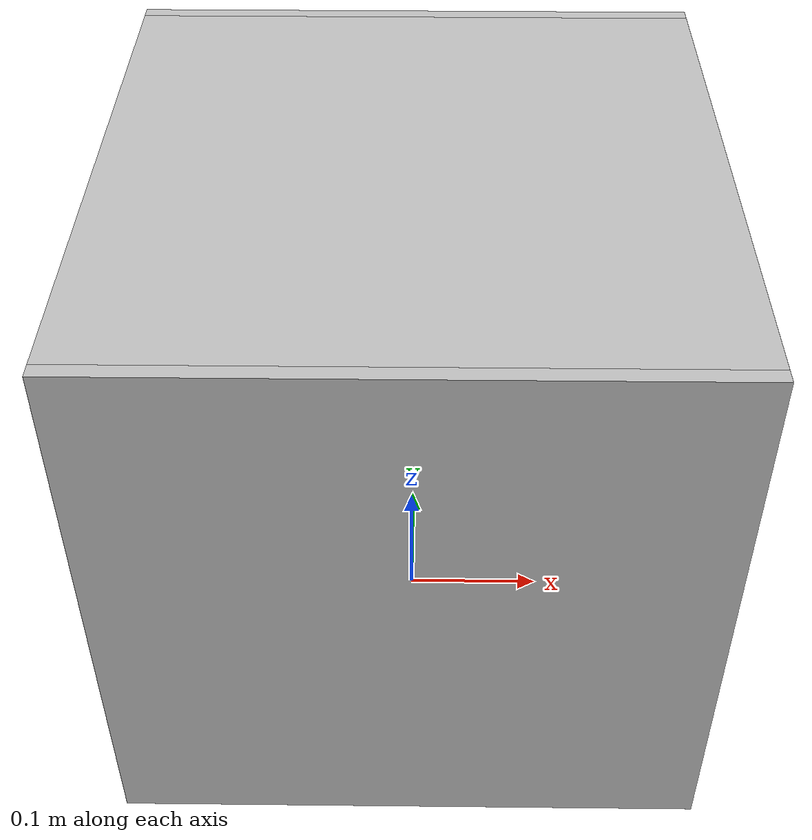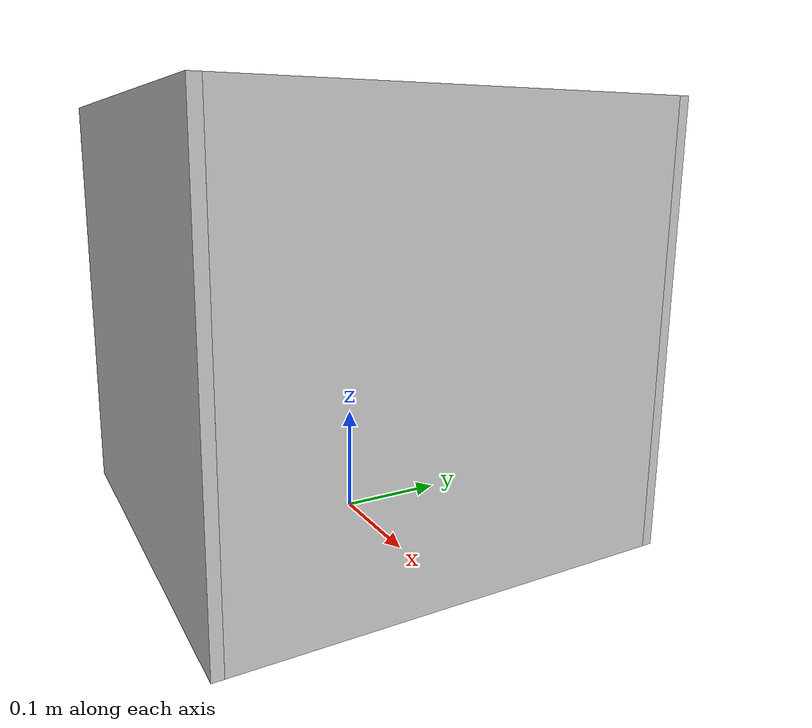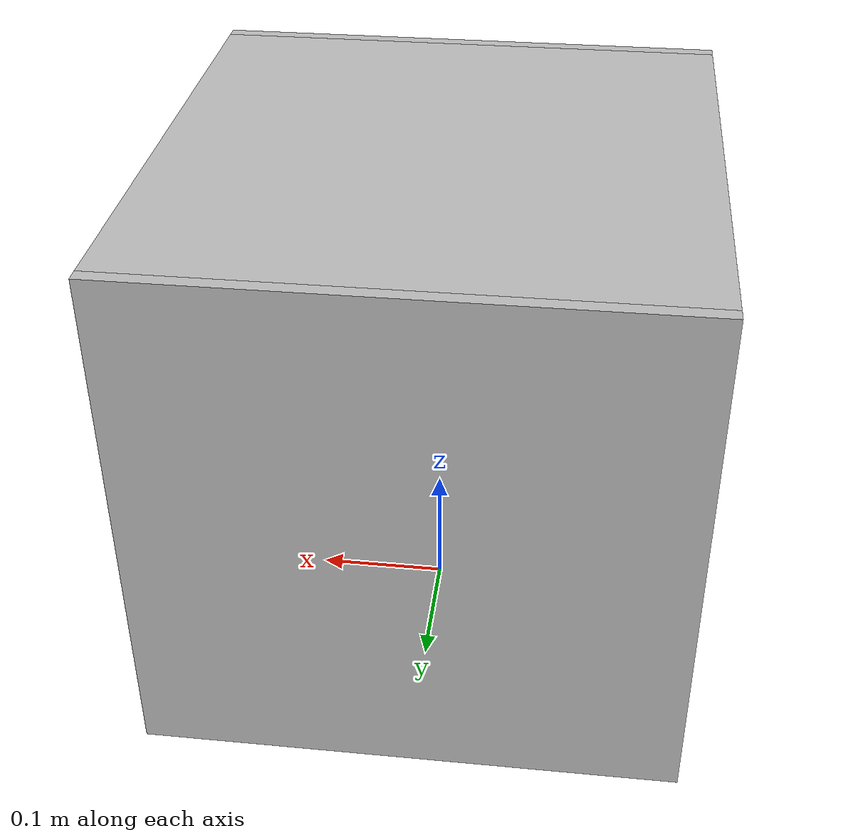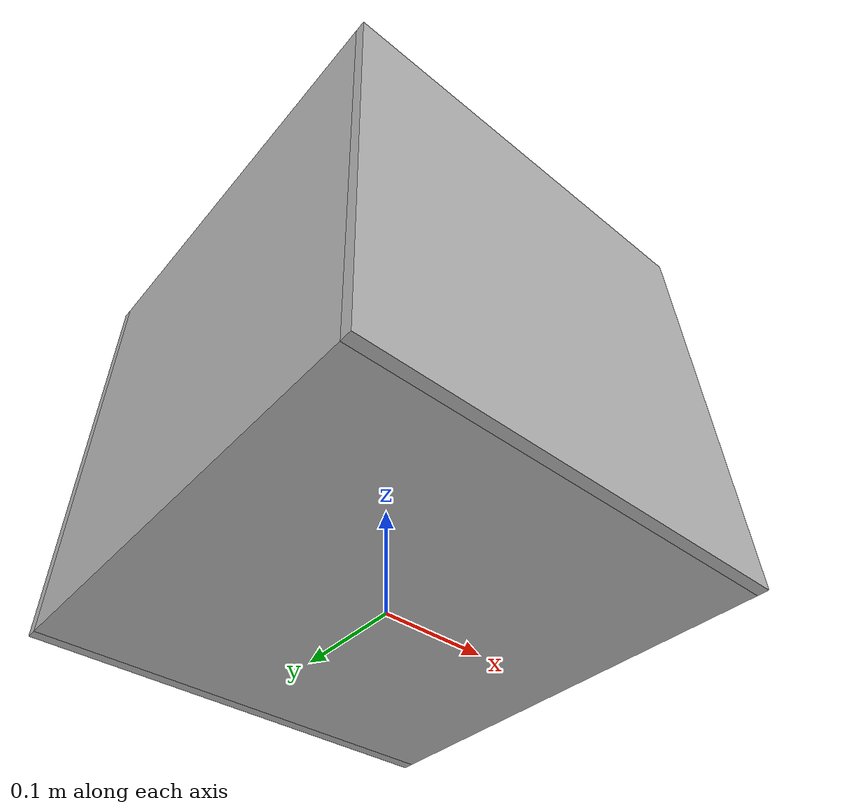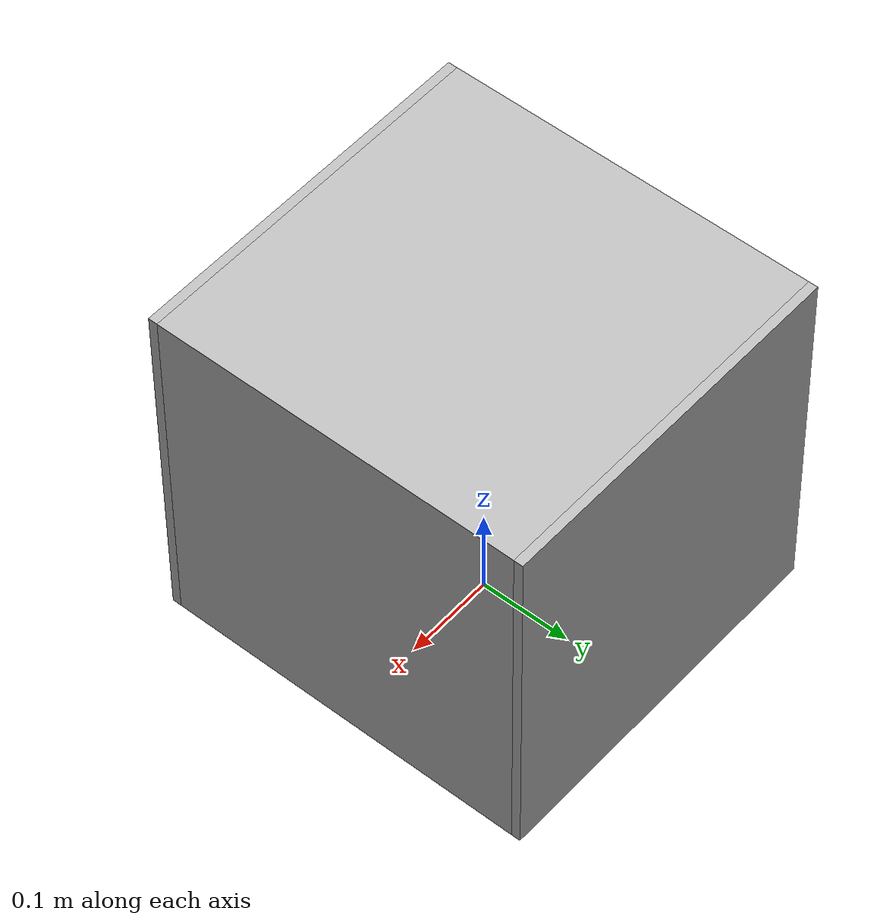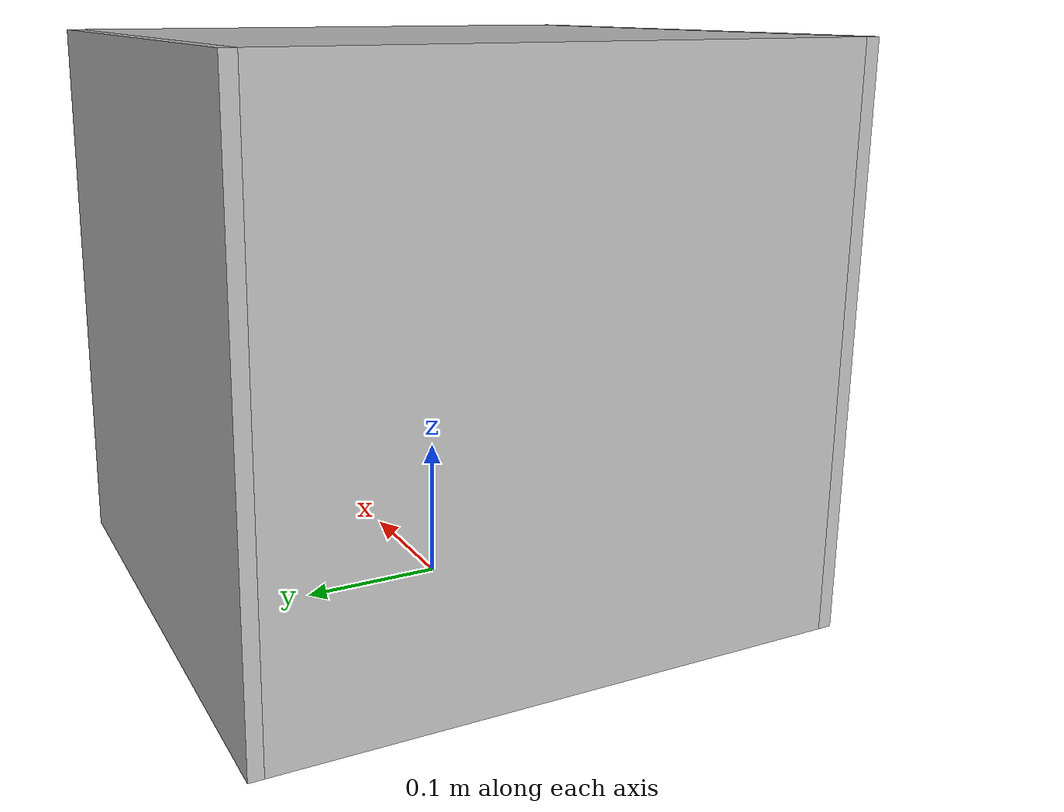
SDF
<?xml version="1.0" ?>
<sdf version="1.6">
  <model name="arTAG_1">
    <pose>0 0 0.2 0 0 0</pose>

    <link name="box">
      <pose>0 0 0 0 0 0</pose>
      <collision name="collision">
        <geometry>
          <box>
            <size>0.4 0.4 0.4</size>
          </box>
        </geometry>
      </collision>
      <visual name="visual">
        <geometry>
          <box>
            <size>0.4 0.4 0.4</size>
          </box>
        </geometry>
        <material>
          <script>
            <uri>model://arTAG_1/materials/scripts</uri>
            <uri>model://arTAG_1/materials/textures</uri>
            <name>arTAG_1/Image</name>
          </script>
        </material>
      </visual>
    </link>

    <link name="right_cover">
      <pose>0 -0.205 0 0 0 0</pose>
      <collision name="collision">
        <geometry>
          <box>
            <size>0.4 0.01 0.4</size>
          </box>
        </geometry>
      </collision>
      <visual name="visual">
        <geometry>
          <box>
            <size>0.4 0.01 0.4</size>
          </box>
        </geometry>
      </visual>
    </link>

    <link name="left_cover">
      <pose>0 0.205 0 0 0 0</pose>
      <collision name="collision">
        <geometry>
          <box>
            <size>0.4 0.01 0.4</size>
          </box>
        </geometry>
      </collision>
      <visual name="visual">
        <geometry>
          <box>
            <size>0.4 0.01 0.4</size>
          </box>
        </geometry>
      </visual>
    </link>

    <joint type="fixed" name="box_left">
      <parent>box</parent>
      <child>left_cover</child>
    </joint>

    <joint type="fixed" name="box_right">
      <parent>box</parent>
      <child>right_cover</child>
    </joint>

  </model>
</sdf>
